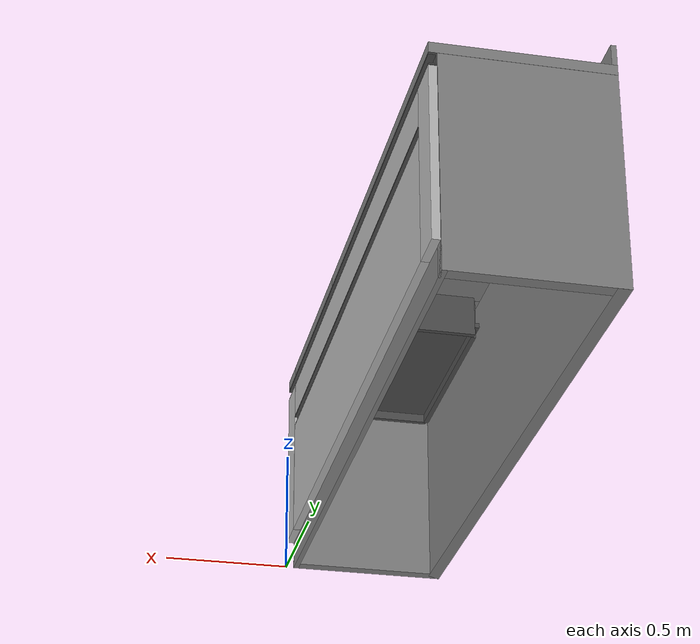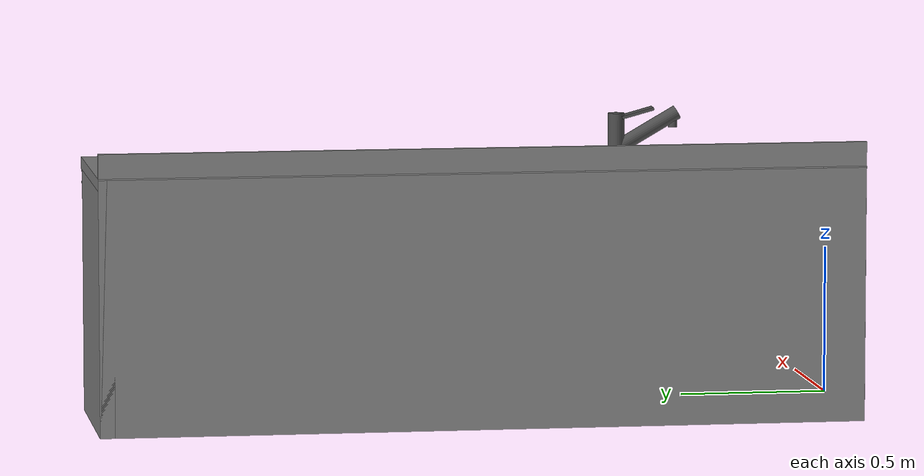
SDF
<?xml version="1.0" ?>
<sdf version="1.4">
    <model name='sink-fix'>
      <link name='link'>
        <pose>0.0 0.0 0.0 0 0 0</pose>
        <inertial>
          <mass>10.0</mass>
          <inertia>
            <ixx>1</ixx>
            <ixy>0</ixy>
            <ixz>0</ixz>
            <iyy>1</iyy>
            <iyz>0</iyz>
            <izz>1</izz>
          </inertia>
        </inertial>
        <visual name='faucet1'>
          <pose>-0.52 0.82 0.94 0 0 0</pose>
          <geometry>
            <cylinder>
              <radius>0.027</radius>
              <length>0.18</length>
            </cylinder>
          </geometry>
          <material>
            <!-- hsr_color/grey -->
            <name>grey</name>
            <ambient>0.7 0.7 0.7 1</ambient>
            <diffuse>0.3 0.3 0.3 1</diffuse>
            <specular>0 0 0 1</specular>
            <emissive>0 0 0 1</emissive>
            <shading>gouraud</shading>
            <receive_shadows>on</receive_shadows>
          </material>
        </visual>
        <collision name='collision_faucet1'>
          <pose>-0.52 0.82 0.94 0 0 0</pose>
          <geometry>
            <cylinder>
              <radius>0.027</radius>
              <length>0.18</length>
            </cylinder>
          </geometry>
          <max_contacts>10</max_contacts>
          <surface>
            <bounce/>
            <friction>
              <ode/>
            </friction>
            <contact>
              <ode/>
            </contact>
          </surface>
        </collision>
        <visual name='faucet2'>
          <pose>-0.52 0.72 0.97 1.047 0 0</pose>
          <geometry>
            <cylinder>
              <radius>0.024</radius>
              <length>0.24</length>
            </cylinder>
          </geometry>
          <material>
            <!-- hsr_color/grey -->
            <name>grey</name>
            <ambient>0.7 0.7 0.7 1</ambient>
            <diffuse>0.3 0.3 0.3 1</diffuse>
            <specular>0 0 0 1</specular>
            <emissive>0 0 0 1</emissive>
            <shading>gouraud</shading>
            <receive_shadows>on</receive_shadows>
          </material>
        </visual>
        <collision name='collision_faucet2'>
          <pose>-0.52 0.72 0.97 1.047 0 0</pose>
          <geometry>
            <cylinder>
              <radius>0.024</radius>
              <length>0.24</length>
            </cylinder>
          </geometry>
          <max_contacts>10</max_contacts>
          <surface>
            <bounce/>
            <friction>
              <ode/>
            </friction>
            <contact>
              <ode/>
            </contact>
          </surface>
        </collision>
        <visual name='faucet3'>
          <pose>-0.52 0.63 1.00 0 0 0</pose>
          <geometry>
            <cylinder>
              <radius>0.015</radius>
              <length>0.04</length>
            </cylinder>
          </geometry>
          <material>
            <!-- hsr_color/grey -->
            <name>grey</name>
            <ambient>0.7 0.7 0.7 1</ambient>
            <diffuse>0.3 0.3 0.3 1</diffuse>
            <specular>0 0 0 1</specular>
            <emissive>0 0 0 1</emissive>
            <shading>gouraud</shading>
            <receive_shadows>on</receive_shadows>
          </material>
        </visual>
        <collision name='collision_faucet3'>
          <pose>-0.52 0.63 1.00 0 0 0</pose>
          <geometry>
            <cylinder>
              <radius>0.015</radius>
              <length>0.04</length>
            </cylinder>
          </geometry>
          <max_contacts>10</max_contacts>
          <surface>
            <bounce/>
            <friction>
              <ode/>
            </friction>
            <contact>
              <ode/>
            </contact>
          </surface>
        </collision>
        <visual name='faucet_handle'>
          <pose>-0.52 0.75 1.03 1.309 0 0</pose>
          <geometry>
            <box>
              <size>0.048 0.01 0.11</size>
            </box>
          </geometry>
          <material>
            <!-- hsr_color/grey -->
            <name>grey</name>
            <ambient>0.7 0.7 0.7 1</ambient>
            <diffuse>0.3 0.3 0.3 1</diffuse>
            <specular>0 0 0 1</specular>
            <emissive>0 0 0 1</emissive>
            <shading>gouraud</shading>
            <receive_shadows>on</receive_shadows>
          </material>
        </visual>
        <collision name='collision_faucet_handle'>
          <pose>-0.52 0.75 1.03 1.309 0 0</pose>
          <geometry>
            <box>
              <size>0.048 0.01 0.11</size>
            </box>
          </geometry>
          <max_contacts>10</max_contacts>
          <surface>
            <bounce/>
            <friction>
              <ode/>
            </friction>
            <contact>
              <ode/>
            </contact>
          </surface>
        </collision>
        <visual name='back_bucket'>
          <pose>-0.57 0.545 0.74 0 0 0</pose>
          <geometry>
            <box>
              <size>0.02 0.8 0.18</size>
            </box>
          </geometry>
          <material>
            <!-- hsr_color/grey -->
            <name>grey</name>
            <ambient>0.7 0.7 0.7 1</ambient>
            <diffuse>0.3 0.3 0.3 1</diffuse>
            <specular>0 0 0 1</specular>
            <emissive>0 0 0 1</emissive>
            <shading>gouraud</shading>
            <receive_shadows>on</receive_shadows>
          </material>
        </visual>
        <collision name='collision_back_bucket'>
          <pose>-0.57 0.545 0.74 0 0 0</pose>
          <geometry>
            <box>
              <size>0.02 0.8 0.18</size>
            </box>
          </geometry>
          <max_contacts>10</max_contacts>
          <surface>
            <bounce/>
            <friction>
              <ode/>
            </friction>
            <contact>
              <ode/>
            </contact>
          </surface>
        </collision>
        <visual name='front_bucket'>
          <pose>-0.06 0.545 0.74 0 0 0</pose>
          <geometry>
            <box>
              <size>0.02 0.8 0.18</size>
            </box>
          </geometry>
          <material>
            <!-- hsr_color/grey -->
            <name>grey</name>
            <ambient>0.7 0.7 0.7 1</ambient>
            <diffuse>0.3 0.3 0.3 1</diffuse>
            <specular>0 0 0 1</specular>
            <emissive>0 0 0 1</emissive>
            <shading>gouraud</shading>
            <receive_shadows>on</receive_shadows>
          </material>
        </visual>
        <collision name='collision_fromt_bucket'>
          <pose>-0.06 0.545 0.74 0 0 0</pose>
          <geometry>
            <box>
              <size>0.02 0.8 0.18</size>
            </box>
          </geometry>
          <max_contacts>10</max_contacts>
          <surface>
            <bounce/>
            <friction>
              <ode/>
            </friction>
            <contact>
              <ode/>
            </contact>
          </surface>
        </collision>
        <visual name='left_bucket'>
          <pose>-0.32 0.14 0.74 0 0 0</pose>
          <geometry>
            <box>
              <size>0.5 0.02 0.18</size>
            </box>
          </geometry>
          <material>
            <!-- hsr_color/grey -->
            <name>grey</name>
            <ambient>0.7 0.7 0.7 1</ambient>
            <diffuse>0.3 0.3 0.3 1</diffuse>
            <specular>0 0 0 1</specular>
            <emissive>0 0 0 1</emissive>
            <shading>gouraud</shading>
            <receive_shadows>on</receive_shadows>
          </material>
        </visual>
        <collision name='collision_left_bucket'>
          <pose>-0.32 0.14 0.74 0 0 0</pose>
          <geometry>
            <box>
              <size>0.5 0.02 0.18</size>
            </box>
          </geometry>
          <max_contacts>10</max_contacts>
          <surface>
            <bounce/>
            <friction>
              <ode/>
            </friction>
            <contact>
              <ode/>
            </contact>
          </surface>
        </collision>
        <visual name='right_bucket'>
          <pose>-0.32 0.96 0.74 0 0 0</pose>
          <geometry>
            <box>
              <size>0.5 0.02 0.18</size>
            </box>
          </geometry>
          <material>
            <!-- hsr_color/grey -->
            <name>grey</name>
            <ambient>0.7 0.7 0.7 1</ambient>
            <diffuse>0.3 0.3 0.3 1</diffuse>
            <specular>0 0 0 1</specular>
            <emissive>0 0 0 1</emissive>
            <shading>gouraud</shading>
            <receive_shadows>on</receive_shadows>
          </material>
        </visual>
        <collision name='collision_right_bucket'>
          <pose>-0.32 0.96 0.74 0 0 0</pose>
          <geometry>
            <box>
              <size>0.5 0.02 0.18</size>
            </box>
          </geometry>
          <max_contacts>10</max_contacts>
          <surface>
            <bounce/>
            <friction>
              <ode/>
            </friction>
            <contact>
              <ode/>
            </contact>
          </surface>
        </collision>
        <visual name='bottom_bucket'>
          <pose>-0.33 0.555 0.695 0 0 0</pose>
          <geometry>
            <box>
              <size>0.52 0.82 0.02</size>
            </box>
          </geometry>
          <material>
            <!-- hsr_color/grey -->
            <name>grey</name>
            <ambient>0.7 0.7 0.7 1</ambient>
            <diffuse>0.3 0.3 0.3 1</diffuse>
            <specular>0 0 0 1</specular>
            <emissive>0 0 0 1</emissive>
            <shading>gouraud</shading>
            <receive_shadows>on</receive_shadows>
          </material>
        </visual>
        <collision name='collision_bottom_bucket'>
          <pose>-0.33 0.555 0.695 0 0 0</pose>
          <geometry>
            <box>
              <size>0.52 0.82 0.02</size>
            </box>
          </geometry>
          <max_contacts>10</max_contacts>
          <surface>
            <bounce/>
            <friction>
              <ode/>
            </friction>
            <contact>
              <ode/>
            </contact>
          </surface>
        </collision>
        <visual name='front_board'>
          <pose>-0.04 1.275 0.425 0 0 0</pose>
          <geometry>
            <box>
              <size>0.02 2.549 0.850</size>
            </box>
          </geometry>
          <material>
            <!-- hsr_color/white -->
            <name>white</name>
            <ambient>1 1 1 1</ambient>
            <diffuse>0.5 0.5 0.5 1</diffuse>
            <specular>0 0 0 1</specular>
            <emissive>0 0 0 1</emissive>
            <shading>gouraud</shading>
            <receive_shadows>on</receive_shadows>
          </material>
        </visual>
        <collision name='collision_front_board'>
          <pose>-0.04 1.275 0.425 0 0 0</pose>
          <geometry>
            <box>
              <size>0.02 2.549 0.850</size>
            </box>
          </geometry>
          <max_contacts>10</max_contacts>
          <surface>
            <bounce/>
            <friction>
              <ode/>
            </friction>
            <contact>
              <ode/>
            </contact>
          </surface>
        </collision>
        <visual name='back_board1'>
          <pose>-0.625 1.275 0.425 0 0 0</pose>
          <geometry>
            <box>
              <size>0.05 2.549 0.850</size>
            </box>
          </geometry>
          <material>
            <!-- hsr_color/white -->
            <name>white</name>
            <ambient>1 1 1 1</ambient>
            <diffuse>0.5 0.5 0.5 1</diffuse>
            <specular>0 0 0 1</specular>
            <emissive>0 0 0 1</emissive>
            <shading>gouraud</shading>
            <receive_shadows>on</receive_shadows>
          </material>
        </visual>
        <collision name='collision_back_board1'>
          <pose>-0.625 1.275 0.425 0 0 0</pose>
          <geometry>
            <box>
              <size>0.05 2.549 0.850</size>
            </box>
          </geometry>
          <max_contacts>10</max_contacts>
          <surface>
            <bounce/>
            <friction>
              <ode/>
            </friction>
            <contact>
              <ode/>
            </contact>
          </surface>
        </collision>
        <visual name='left_board'>
          <pose>-0.34 0.025 0.425 0 0 0</pose>
          <geometry>
            <box>
              <size>0.62 0.05 0.850</size>
            </box>
          </geometry>
          <material>
            <!-- hsr_color/white -->
            <name>white</name>
            <ambient>1 1 1 1</ambient>
            <diffuse>0.5 0.5 0.5 1</diffuse>
            <specular>0 0 0 1</specular>
            <emissive>0 0 0 1</emissive>
            <shading>gouraud</shading>
            <receive_shadows>on</receive_shadows>
          </material>
        </visual>
        <collision name='collision_left_board'>
          <pose>-0.34 0.025 0.425 0 0 0</pose>
          <geometry>
            <box>
              <size>0.62 0.05 0.850</size>
            </box>
          </geometry>
          <max_contacts>10</max_contacts>
          <surface>
            <bounce/>
            <friction>
              <ode/>
            </friction>
            <contact>
              <ode/>
            </contact>
          </surface>
        </collision>
        <visual name='right_board'>
          <pose>-0.34 2.525 0.425 0 0 0</pose>
          <geometry>
            <box>
              <size>0.62 0.05 0.850</size>
            </box>
          </geometry>
          <material>
            <!-- hsr_color/white -->
            <name>white</name>
            <ambient>1 1 1 1</ambient>
            <diffuse>0.5 0.5 0.5 1</diffuse>
            <specular>0 0 0 1</specular>
            <emissive>0 0 0 1</emissive>
            <shading>gouraud</shading>
            <receive_shadows>on</receive_shadows>
          </material>
        </visual>
        <collision name='collision_right_board'>
          <pose>-0.34 2.525 0.425 0 0 0</pose>
          <geometry>
            <box>
              <size>0.62 0.05 0.850</size>
            </box>
          </geometry>
          <max_contacts>10</max_contacts>
          <surface>
            <bounce/>
            <friction>
              <ode/>
            </friction>
            <contact>
              <ode/>
            </contact>
          </surface>
        </collision>
        <visual name='top_left_board'>
          <pose>-0.325 0.0725 0.835 0 0 0</pose>
          <geometry>
            <box>
              <size>0.65 0.146 0.04</size>
            </box>
          </geometry>
          <material>
            <!-- hsr_color/white -->
            <name>white</name>
            <ambient>1 1 1 1</ambient>
            <diffuse>0.5 0.5 0.5 1</diffuse>
            <specular>0 0 0 1</specular>
            <emissive>0 0 0 1</emissive>
            <shading>gouraud</shading>
            <receive_shadows>on</receive_shadows>
          </material>
        </visual>
        <collision name='collision_top_left_board'>
          <pose>-0.325 0.0725 0.835 0 0 0</pose>
          <geometry>
            <box>
              <size>0.65 0.146 0.04</size>
            </box>
          </geometry>
          <max_contacts>10</max_contacts>
          <surface>
            <bounce/>
            <friction>
              <ode/>
            </friction>
            <contact>
              <ode/>
            </contact>
          </surface>
        </collision>
        <visual name='top_right_board'>
          <pose>-0.325 1.7475 0.835 0 0 0</pose>
          <geometry>
            <box>
              <size>0.65 1.606 0.04</size>
            </box>
          </geometry>
          <material>
            <!-- hsr_color/white -->
            <name>white</name>
            <ambient>1 1 1 1</ambient>
            <diffuse>0.5 0.5 0.5 1</diffuse>
            <specular>0 0 0 1</specular>
            <emissive>0 0 0 1</emissive>
            <shading>gouraud</shading>
            <receive_shadows>on</receive_shadows>
          </material>
        </visual>
        <collision name='collision_top_right_board'>
          <pose>-0.325 1.7475 0.835 0 0 0</pose>
          <geometry>
            <box>
              <size>0.65 1.606 0.04</size>
            </box>
          </geometry>
          <max_contacts>10</max_contacts>
          <surface>
            <bounce/>
            <friction>
              <ode/>
            </friction>
            <contact>
              <ode/>
            </contact>
          </surface>
        </collision>
        <visual name='top_front_board'>
          <pose>-0.035 0.545 0.835 0 0 0</pose>
          <geometry>
            <box>
              <size>0.07 0.8 0.04</size>
            </box>
          </geometry>
          <material>
            <!-- hsr_color/white -->
            <name>white</name>
            <ambient>1 1 1 1</ambient>
            <diffuse>0.5 0.5 0.5 1</diffuse>
            <specular>0 0 0 1</specular>
            <emissive>0 0 0 1</emissive>
            <shading>gouraud</shading>
            <receive_shadows>on</receive_shadows>
          </material>
        </visual>
        <collision name='collision_top_front_board'>
          <pose>-0.035 0.545 0.835 0 0 0</pose>
          <geometry>
            <box>
              <size>0.07 0.8 0.04</size>
            </box>
          </geometry>
          <max_contacts>10</max_contacts>
          <surface>
            <bounce/>
            <friction>
              <ode/>
            </friction>
            <contact>
              <ode/>
            </contact>
          </surface>
        </collision>
        <visual name='top_back_board'>
          <pose>-0.56 0.545 0.835 0 0 0</pose>
          <geometry>
            <box>
              <size>0.18 0.8 0.04</size>
            </box>
          </geometry>
          <material>
            <!-- hsr_color/white -->
            <name>white</name>
            <ambient>1 1 1 1</ambient>
            <diffuse>0.5 0.5 0.5 1</diffuse>
            <specular>0 0 0 1</specular>
            <emissive>0 0 0 1</emissive>
            <shading>gouraud</shading>
            <receive_shadows>on</receive_shadows>
          </material>
        </visual>
        <collision name='collision_top_back_board'>
          <pose>-0.56 0.545 0.835 0 0 0</pose>
          <geometry>
            <box>
              <size>0.18 0.8 0.04</size>
            </box>
          </geometry>
          <max_contacts>10</max_contacts>
          <surface>
            <bounce/>
            <friction>
              <ode/>
            </friction>
            <contact>
              <ode/>
            </contact>
          </surface>
        </collision>
        <visual name='back_board2'>
          <pose>-0.64 1.275 0.895 0 0 0</pose>
          <geometry>
            <box>
              <size>0.02 2.55 0.08</size>
            </box>
          </geometry>
          <material>
            <!-- hsr_color/white -->
            <name>white</name>
            <ambient>1 1 1 1</ambient>
            <diffuse>0.5 0.5 0.5 1</diffuse>
            <specular>0 0 0 1</specular>
            <emissive>0 0 0 1</emissive>
            <shading>gouraud</shading>
            <receive_shadows>on</receive_shadows>
          </material>
        </visual>
        <collision name='collision_back_board2'>
          <pose>-0.64 1.275 0.895 0 0 0</pose>
          <geometry>
            <box>
              <size>0.02 2.55 0.08</size>
            </box>
          </geometry>
          <max_contacts>10</max_contacts>
          <surface>
            <bounce/>
            <friction>
              <ode/>
            </friction>
            <contact>
              <ode/>
            </contact>
          </surface>
        </collision>
        <visual name='handle1_1'>
          <pose>-0.015 1.275 0.81 0 0 0</pose>
          <geometry>
            <box>
              <size>0.03 2.55 0.005</size>
            </box>
          </geometry>
          <material>
            <!-- hsr_color/grey -->
            <name>grey</name>
            <ambient>0.7 0.7 0.7 1</ambient>
            <diffuse>0.3 0.3 0.3 1</diffuse>
            <specular>0 0 0 1</specular>
            <emissive>0 0 0 1</emissive>
            <shading>gouraud</shading>
            <receive_shadows>on</receive_shadows>
          </material>
        </visual>
        <collision name='collision_handle1_1'>
          <pose>-0.015 1.275 0.81 0 0 0</pose>
          <geometry>
            <box>
              <size>0.03 2.55 0.005</size>
            </box>
          </geometry>
          <max_contacts>10</max_contacts>
          <surface>
            <bounce/>
            <friction>
              <ode/>
            </friction>
            <contact>
              <ode/>
            </contact>
          </surface>
        </collision>
        <visual name='handle1_2'>
          <pose>-0.029 1.275 0.7925 0 0 0</pose>
          <geometry>
            <box>
              <size>0.005 2.55 0.04</size>
            </box>
          </geometry>
          <material>
            <!-- hsr_color/grey -->
            <name>grey</name>
            <ambient>0.7 0.7 0.7 1</ambient>
            <diffuse>0.3 0.3 0.3 1</diffuse>
            <specular>0 0 0 1</specular>
            <emissive>0 0 0 1</emissive>
            <shading>gouraud</shading>
            <receive_shadows>on</receive_shadows>
          </material>
        </visual>
        <collision name='collision_handle1_2'>
          <pose>-0.029 1.275 0.7925 0 0 0</pose>
          <geometry>
            <box>
              <size>0.005 2.55 0.04</size>
            </box>
          </geometry>
          <max_contacts>10</max_contacts>
          <surface>
            <bounce/>
            <friction>
              <ode/>
            </friction>
            <contact>
              <ode/>
            </contact>
          </surface>
        </collision>
        <visual name='handle1_3'>
          <pose>-0.015 1.275 0.77 0 0 0</pose>
          <geometry>
            <box>
              <size>0.03 2.55 0.005</size>
            </box>
          </geometry>
          <material>
            <!-- hsr_color/grey -->
            <name>grey</name>
            <ambient>0.7 0.7 0.7 1</ambient>
            <diffuse>0.3 0.3 0.3 1</diffuse>
            <specular>0 0 0 1</specular>
            <emissive>0 0 0 1</emissive>
            <shading>gouraud</shading>
            <receive_shadows>on</receive_shadows>
          </material>
        </visual>
        <collision name='collision_handle1_3'>
          <pose>-0.015 1.275 0.77 0 0 0</pose>
          <geometry>
            <box>
              <size>0.03 2.55 0.005</size>
            </box>
          </geometry>
          <max_contacts>10</max_contacts>
          <surface>
            <bounce/>
            <friction>
              <ode/>
            </friction>
            <contact>
              <ode/>
            </contact>
          </surface>
        </collision>
        <visual name='front_left_drawer'>
          <pose>-0.015 0.0725 0.44 0 0 0</pose>
          <geometry>
            <box>
              <size>0.03 0.145 0.66</size>
            </box>
          </geometry>
          <material>
            <!-- sink001 -->
            <name>sink001</name>
            <pbr>
              <metal>
                <albedo_map>model://sink/textures/sink_001.png</albedo_map>
                <max_anisotropy>16</max_anisotropy>
                <metalness>0</metalness>
              </metal>
            </pbr>
          </material>
        </visual>
        <collision name='collision_left_drawer'>
          <pose>-0.015 0.0725 0.44 0 0 0</pose>
          <geometry>
            <box>
              <size>0.03 0.145 0.66</size>
            </box>
          </geometry>
          <max_contacts>10</max_contacts>
          <surface>
            <bounce/>
            <friction>
              <ode/>
            </friction>
            <contact>
              <ode/>
            </contact>
          </surface>
        </collision>
        <visual name='front_right_drawer'>
          <pose>-0.015 2.4725 0.44 0 0 0</pose>
          <geometry>
            <box>
              <size>0.03 0.145 0.66</size>
            </box>
          </geometry>
          <material>
            <!-- sink001 -->
            <name>sink001</name>
            <pbr>
              <metal>
                <albedo_map>model://sink/textures/sink_001.png</albedo_map>
                <max_anisotropy>16</max_anisotropy>
                <metalness>0</metalness>
              </metal>
            </pbr>
          </material>
        </visual>
        <collision name='collision_right_drawer'>
          <pose>-0.015 2.4725 0.44 0 0 0</pose>
          <geometry>
            <box>
              <size>0.03 0.145 0.66</size>
            </box>
          </geometry>
          <max_contacts>10</max_contacts>
          <surface>
            <bounce/>
            <friction>
              <ode/>
            </friction>
            <contact>
              <ode/>
            </contact>
          </surface>
        </collision>
        <visual name='front_top_drawer'>
          <pose>-0.015 1.275 0.6975 0 0 0</pose>
          <geometry>
            <box>
              <size>0.03 2.25 0.145</size>
            </box>
          </geometry>
          <material>
            <!-- sink001 -->
            <name>sink001</name>
            <pbr>
              <metal>
                <albedo_map>model://sink/textures/sink_001.png</albedo_map>
                <max_anisotropy>16</max_anisotropy>
                <metalness>0</metalness>
              </metal>
            </pbr>
          </material>
        </visual>
        <collision name='collision_top_drawer'>
          <pose>-0.015 1.275 0.6975 0 0 0</pose>
          <geometry>
            <box>
              <size>0.03 2.25 0.145</size>
            </box>
          </geometry>
          <max_contacts>10</max_contacts>
          <surface>
            <bounce/>
            <friction>
              <ode/>
            </friction>
            <contact>
              <ode/>
            </contact>
          </surface>
        </collision>
        <visual name='handle2_1'>
          <pose>-0.015 1.275 0.62 0 0 0</pose>
          <geometry>
            <box>
              <size>0.03 2.25 0.005</size>
            </box>
          </geometry>
          <material>
            <!-- hsr_color/grey -->
            <name>grey</name>
            <ambient>0.7 0.7 0.7 1</ambient>
            <diffuse>0.3 0.3 0.3 1</diffuse>
            <specular>0 0 0 1</specular>
            <emissive>0 0 0 1</emissive>
            <shading>gouraud</shading>
            <receive_shadows>on</receive_shadows>
          </material>
        </visual>
        <collision name='collision_handle2_1'>
          <pose>-0.015 1.275 0.62 0 0 0</pose>
          <geometry>
            <box>
              <size>0.03 2.25 0.005</size>
            </box>
          </geometry>
          <max_contacts>10</max_contacts>
          <surface>
            <bounce/>
            <friction>
              <ode/>
            </friction>
            <contact>
              <ode/>
            </contact>
          </surface>
        </collision>
        <visual name='handle2_2'>
          <pose>-0.029 1.275 0.6025 0 0 0</pose>
          <geometry>
            <box>
              <size>0.005 2.25 0.04</size>
            </box>
          </geometry>
          <material>
            <!-- hsr_color/grey -->
            <name>grey</name>
            <ambient>0.7 0.7 0.7 1</ambient>
            <diffuse>0.3 0.3 0.3 1</diffuse>
            <specular>0 0 0 1</specular>
            <emissive>0 0 0 1</emissive>
            <shading>gouraud</shading>
            <receive_shadows>on</receive_shadows>
          </material>
        </visual>
        <collision name='collision_handle2_2'>
          <pose>-0.029 1.275 0.6025 0 0 0</pose>
          <geometry>
            <box>
              <size>0.005 2.25 0.04</size>
            </box>
          </geometry>
          <max_contacts>10</max_contacts>
          <surface>
            <bounce/>
            <friction>
              <ode/>
            </friction>
            <contact>
              <ode/>
            </contact>
          </surface>
        </collision>
        <visual name='handle2_3'>
          <pose>-0.015 1.275 0.58 0 0 0</pose>
          <geometry>
            <box>
              <size>0.03 2.25 0.005</size>
            </box>
          </geometry>
          <material>
            <!-- hsr_color/grey -->
            <name>grey</name>
            <ambient>0.7 0.7 0.7 1</ambient>
            <diffuse>0.3 0.3 0.3 1</diffuse>
            <specular>0 0 0 1</specular>
            <emissive>0 0 0 1</emissive>
            <shading>gouraud</shading>
            <receive_shadows>on</receive_shadows>
          </material>
        </visual>
        <collision name='collision_handle2_3'>
          <pose>-0.015 1.275 0.58 0 0 0</pose>
          <geometry>
            <box>
              <size>0.03 2.25 0.005</size>
            </box>
          </geometry>
          <max_contacts>10</max_contacts>
          <surface>
            <bounce/>
            <friction>
              <ode/>
            </friction>
            <contact>
              <ode/>
            </contact>
          </surface>
        </collision>
        <visual name='front_bottom_drawer'>
          <pose>-0.015 1.275 0.345 0 0 0</pose>
          <geometry>
            <box>
              <size>0.03 2.25 0.47</size>
            </box>
          </geometry>
          <material>
            <!-- sink001 -->
            <name>sink001</name>
            <pbr>
              <metal>
                <albedo_map>model://sink/textures/sink_001.png</albedo_map>
                <max_anisotropy>16</max_anisotropy>
                <metalness>0</metalness>
              </metal>
            </pbr>
          </material>
        </visual>
        <collision name='collision_bottom_drawer'>
          <pose>-0.015 1.275 0.345 0 0 0</pose>
          <geometry>
            <box>
              <size>0.03 2.25 0.47</size>
            </box>
          </geometry>
          <max_contacts>10</max_contacts>
          <surface>
            <bounce/>
            <friction>
              <ode/>
            </friction>
            <contact>
              <ode/>
            </contact>
          </surface>
        </collision>
        <velocity_decay>
          <linear>0</linear>
          <angular>0</angular>
        </velocity_decay>
        <self_collide>0</self_collide>
        <kinematic>0</kinematic>
        <gravity>1</gravity>
      </link>
      <static>1</static>
    </model>
</sdf>
